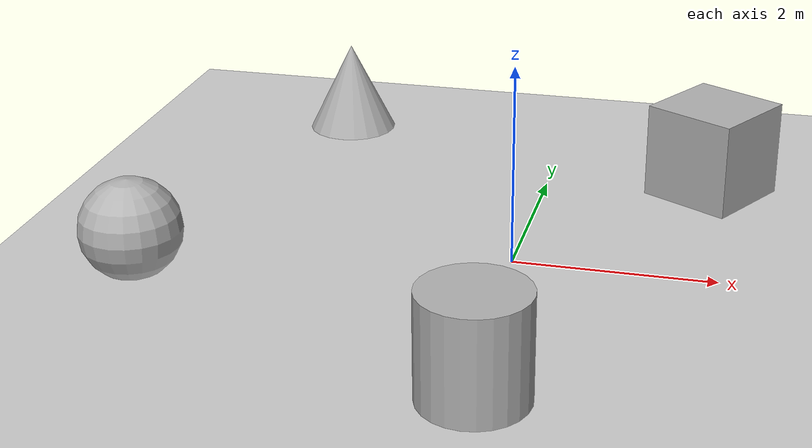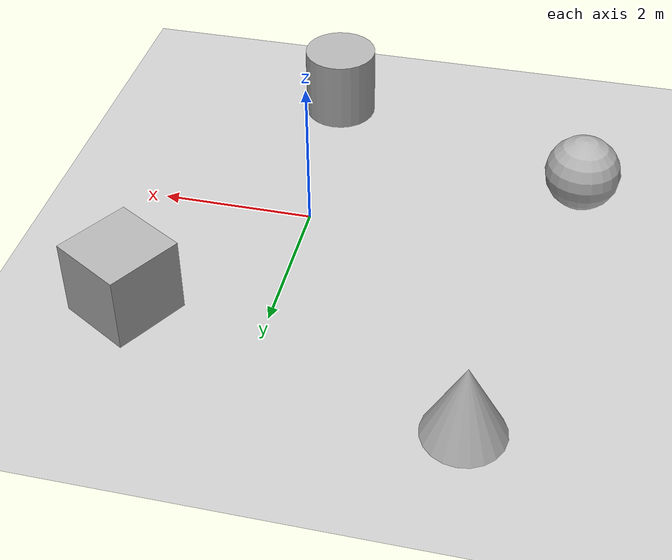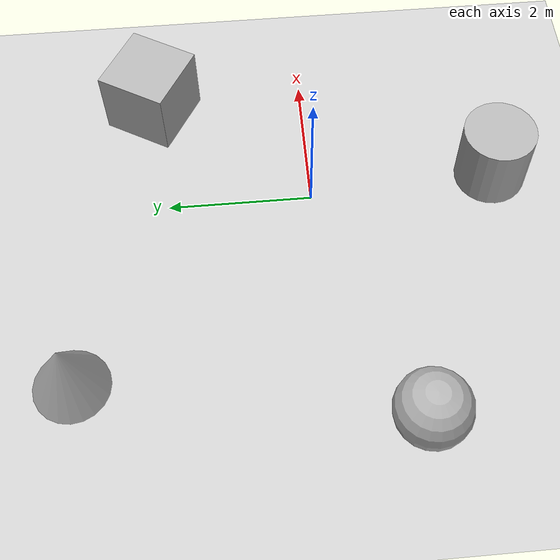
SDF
<sdf version='1.10'>
  <world name='empty'>
    <physics name='1ms' type='ignored'>
      <max_step_size>0.001</max_step_size>
      <real_time_factor>1</real_time_factor>
      <real_time_update_rate>1000</real_time_update_rate>
    </physics>
    <plugin name='gz::sim::systems::Physics' filename='gz-sim-physics-system'/>
    <plugin name='gz::sim::systems::UserCommands' filename='gz-sim-user-commands-system'/>
    <plugin name='gz::sim::systems::SceneBroadcaster' filename='gz-sim-scene-broadcaster-system'/>
    <plugin name='gz::sim::systems::Contact' filename='gz-sim-contact-system'/>
    <plugin name='gz::sim::systems::Sensors' filename='gz-sim-sensors-system'/>
    <gravity>0 0 -9.8000000000000007</gravity>
    <magnetic_field>5.5644999999999998e-06 2.2875799999999999e-05 -4.2388400000000002e-05</magnetic_field>
    <atmosphere type='adiabatic'/>
    <scene>
      <ambient>0.400000006 0.400000006 0.400000006 1</ambient>
      <background>0.699999988 0.699999988 0.699999988 1</background>
      <shadows>true</shadows>
    </scene>
    <model name='ground_plane'>
      <static>true</static>
      <link name='link'>
        <collision name='collision'>
          <geometry>
            <plane>
              <normal>0 0 1</normal>
              <size>100 100</size>
            </plane>
          </geometry>
          <surface>
            <friction>
              <ode/>
            </friction>
            <bounce/>
            <contact/>
          </surface>
        </collision>
        <visual name='visual'>
          <geometry>
            <plane>
              <normal>0 0 1</normal>
              <size>100 100</size>
            </plane>
          </geometry>
          <material>
            <ambient>0.800000012 0.800000012 0.800000012 1</ambient>
            <diffuse>0.800000012 0.800000012 0.800000012 1</diffuse>
            <specular>0.800000012 0.800000012 0.800000012 1</specular>
          </material>
        </visual>
        <pose>0 0 0 0 0 0</pose>
        <inertial>
          <pose>0 0 0 0 0 0</pose>
          <mass>1</mass>
          <inertia>
            <ixx>1</ixx>
            <ixy>0</ixy>
            <ixz>0</ixz>
            <iyy>1</iyy>
            <iyz>0</iyz>
            <izz>1</izz>
          </inertia>
        </inertial>
        <enable_wind>false</enable_wind>
      </link>
      <pose>0 0 0 0 0 0</pose>
      <self_collide>false</self_collide>
    </model>
    <model name='box'>
      <pose>1.7509399999999999 2.1821799999999998 0.5 -2.0228499999999992e-21 -5.1562400000000003e-21 -0.52508999999999995</pose>
      <link name='box_link'>
        <inertial>
          <inertia>
            <ixx>0.16666</ixx>
            <ixy>0</ixy>
            <ixz>0</ixz>
            <iyy>0.16666</iyy>
            <iyz>0</iyz>
            <izz>0.16666</izz>
          </inertia>
          <mass>1</mass>
          <pose>0 0 0 0 0 0</pose>
        </inertial>
        <collision name='box_collision'>
          <geometry>
            <box>
              <size>1 1 1</size>
            </box>
          </geometry>
          <surface>
            <friction>
              <ode/>
            </friction>
            <bounce/>
            <contact/>
          </surface>
        </collision>
        <visual name='box_visual'>
          <geometry>
            <box>
              <size>1 1 1</size>
            </box>
          </geometry>
          <material>
            <ambient>0.300000012 0.300000012 0.300000012 1</ambient>
            <diffuse>0.699999988 0.699999988 0.699999988 1</diffuse>
            <specular>1 1 1 1</specular>
          </material>
        </visual>
        <pose>0 0 0 0 0 0</pose>
        <enable_wind>false</enable_wind>
      </link>
      <static>false</static>
      <self_collide>false</self_collide>
    </model>
    <model name='cylinder'>
      <pose>0.18329599999999999 -2.5863700000000001 0.5 1.5734899999999999e-07 6.5832700000000023e-07 1.36947e-08</pose>
      <link name='cylinder_link'>
        <inertial>
          <inertia>
            <ixx>0.14580000000000001</ixx>
            <ixy>0</ixy>
            <ixz>0</ixz>
            <iyy>0.14580000000000001</iyy>
            <iyz>0</iyz>
            <izz>0.125</izz>
          </inertia>
          <mass>1</mass>
          <pose>0 0 0 0 0 0</pose>
        </inertial>
        <collision name='cylinder_collision'>
          <geometry>
            <cylinder>
              <radius>0.5</radius>
              <length>1</length>
            </cylinder>
          </geometry>
          <surface>
            <friction>
              <ode/>
            </friction>
            <bounce/>
            <contact/>
          </surface>
        </collision>
        <visual name='cylinder_visual'>
          <geometry>
            <cylinder>
              <radius>0.5</radius>
              <length>1</length>
            </cylinder>
          </geometry>
          <material>
            <ambient>0.300000012 0.300000012 0.300000012 1</ambient>
            <diffuse>0.699999988 0.699999988 0.699999988 1</diffuse>
            <specular>1 1 1 1</specular>
          </material>
        </visual>
        <pose>0 0 0 0 0 0</pose>
        <enable_wind>false</enable_wind>
      </link>
      <static>false</static>
      <self_collide>false</self_collide>
    </model>
    <model name='cone'>
      <pose>-2.58643 3.26451 0.5 5.2544599999999997e-17 -7.7132800000000005e-10 -3.4184900000000002e-23</pose>
      <link name='cone_link'>
        <inertial>
          <inertia>
            <ixx>0.074999999999999997</ixx>
            <ixy>0</ixy>
            <ixz>0</ixz>
            <iyy>0.074999999999999997</iyy>
            <iyz>0</iyz>
            <izz>0.074999999999999997</izz>
          </inertia>
          <mass>1</mass>
          <pose>0 0 0 0 0 0</pose>
        </inertial>
        <collision name='cone_collision'>
          <geometry>
            <cone>
              <radius>0.5</radius>
              <length>1</length>
            </cone>
          </geometry>
          <surface>
            <friction>
              <ode/>
            </friction>
            <bounce/>
            <contact/>
          </surface>
        </collision>
        <visual name='cone_visual'>
          <geometry>
            <cone>
              <radius>0.5</radius>
              <length>1</length>
            </cone>
          </geometry>
          <material>
            <ambient>0.300000012 0.300000012 0.300000012 1</ambient>
            <diffuse>0.699999988 0.699999988 0.699999988 1</diffuse>
            <specular>1 1 1 1</specular>
          </material>
        </visual>
        <pose>0 0 0 0 0 0</pose>
        <enable_wind>false</enable_wind>
      </link>
      <static>false</static>
      <self_collide>false</self_collide>
    </model>
    <model name='sphere'>
      <pose>-3.4625699999999999 -1.1154299999999999 0.5 0 0 0</pose>
      <link name='sphere_link'>
        <inertial>
          <inertia>
            <ixx>0.10000000000000001</ixx>
            <ixy>0</ixy>
            <ixz>0</ixz>
            <iyy>0.10000000000000001</iyy>
            <iyz>0</iyz>
            <izz>0.10000000000000001</izz>
          </inertia>
          <mass>1</mass>
          <pose>0 0 0 0 0 0</pose>
        </inertial>
        <collision name='sphere_collision'>
          <geometry>
            <sphere>
              <radius>0.5</radius>
            </sphere>
          </geometry>
          <surface>
            <friction>
              <ode/>
            </friction>
            <bounce/>
            <contact/>
          </surface>
        </collision>
        <visual name='sphere_visual'>
          <geometry>
            <sphere>
              <radius>0.5</radius>
            </sphere>
          </geometry>
          <material>
            <ambient>0.300000012 0.300000012 0.300000012 1</ambient>
            <diffuse>0.699999988 0.699999988 0.699999988 1</diffuse>
            <specular>1 1 1 1</specular>
          </material>
        </visual>
        <pose>0 0 0 0 0 0</pose>
        <enable_wind>false</enable_wind>
      </link>
      <static>false</static>
      <self_collide>false</self_collide>
    </model>
    <light name='sun' type='directional'>
      <pose>0 0 10 0 0 0</pose>
      <cast_shadows>true</cast_shadows>
      <intensity>1</intensity>
      <direction>-0.5 0.10000000000000001 -0.90000000000000002</direction>
      <diffuse>0.800000012 0.800000012 0.800000012 1</diffuse>
      <specular>0.200000003 0.200000003 0.200000003 1</specular>
      <attenuation>
        <range>1000</range>
        <linear>0.0099999997764825821</linear>
        <constant>0.89999997615814209</constant>
        <quadratic>0.0010000000474974513</quadratic>
      </attenuation>
      <spot>
        <inner_angle>0</inner_angle>
        <outer_angle>0</outer_angle>
        <falloff>0</falloff>
      </spot>
    </light>
  </world>
</sdf>
